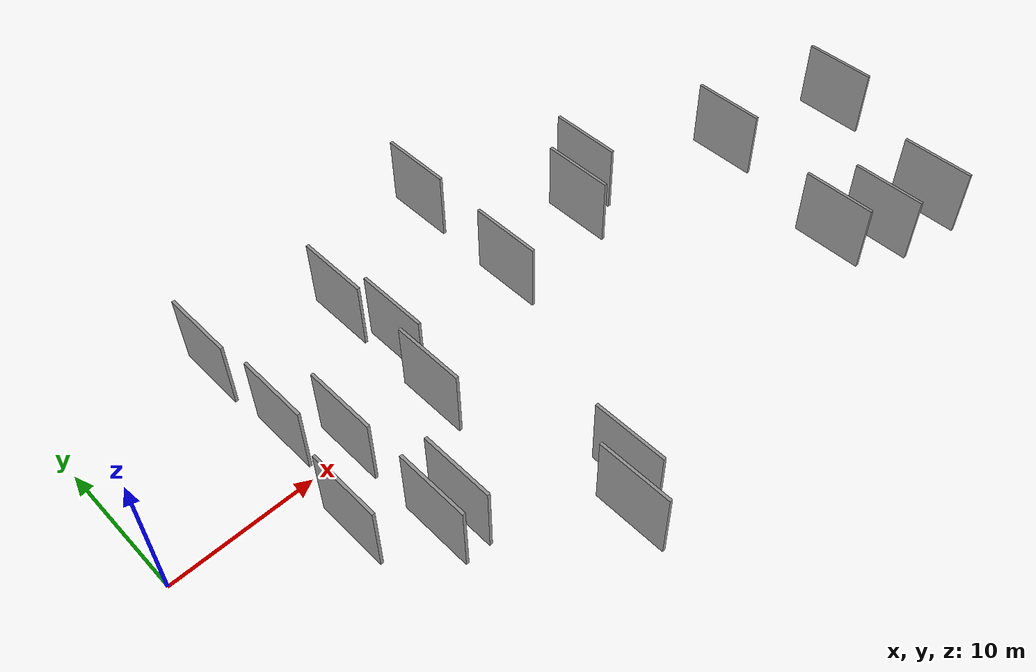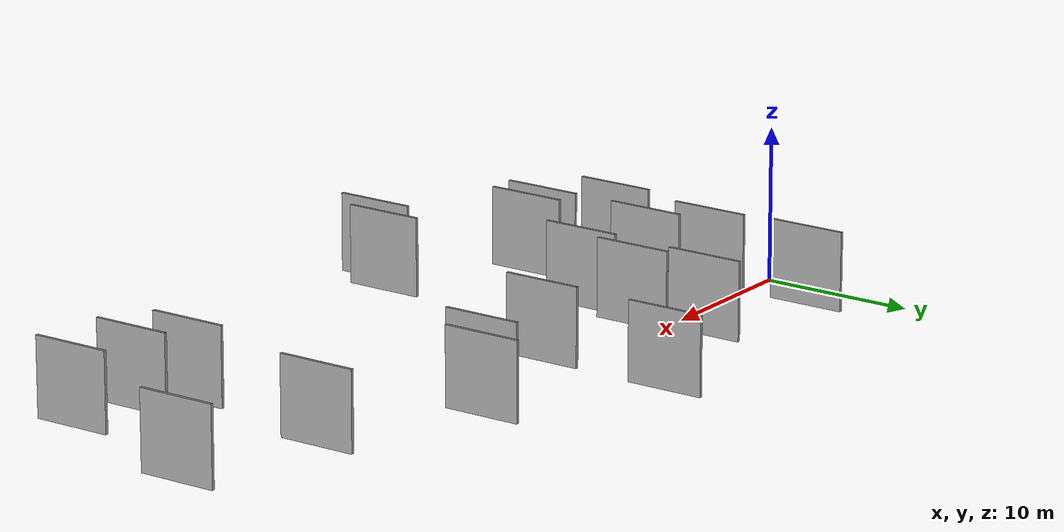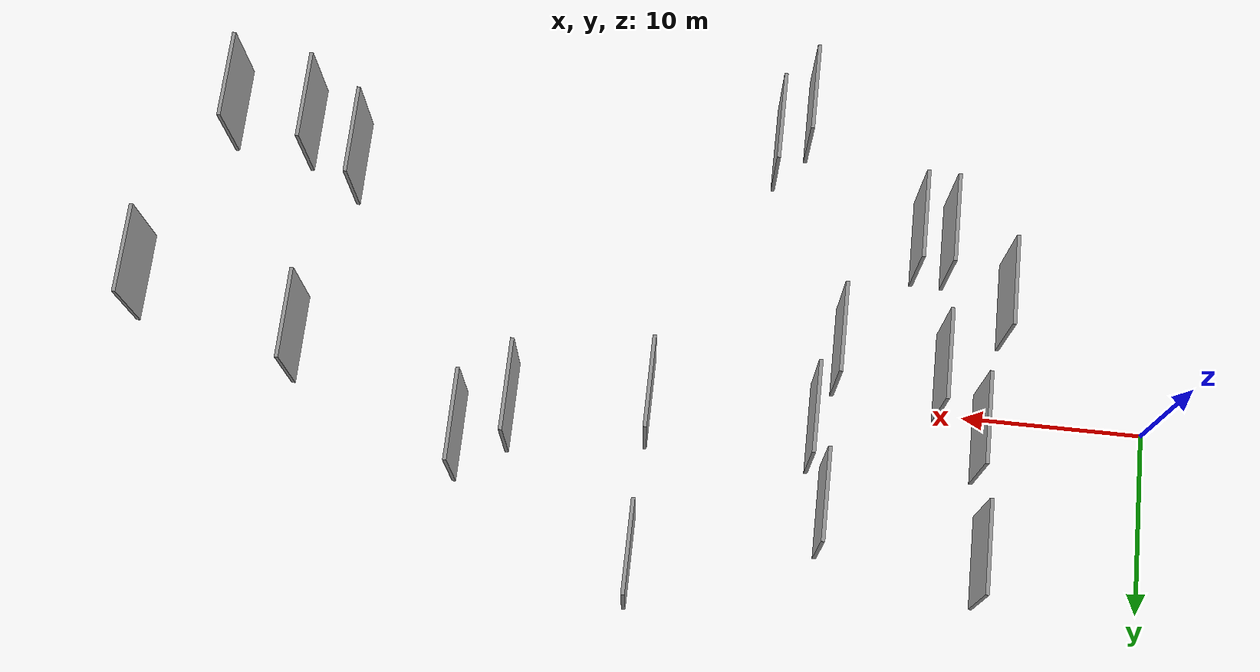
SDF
<sdf version="1.6">
 <world name="default">
  <scene>
   <sky><clouds><speed>12</speed></clouds></sky>
   <ambient>0.4 0.4 0.4 1</ambient>
   <background>0.7 0.7 0.7 1</background>
   <shadows>1</shadows>
  </scene>
  <gravity>0 0 -9.8066</gravity>
  <magnetic_field>6e-06 2.3e-05 -4.2e-05</magnetic_field>
  <physics default="0" name="default_physics" type="ode">
   <ode>
    <solver>
     <type>quick</type>
     <iters>10</iters>
     <sor>1.0</sor>
     <use_dynamic_moi_rescaling>0</use_dynamic_moi_rescaling>
    </solver>
    <constraints>
     <cfm>0</cfm>
     <erp>0.2</erp>
     <contact_max_correcting_vel>100</contact_max_correcting_vel>
     <contact_surface_layer>0.001</contact_surface_layer>
    </constraints>
   </ode>
   <max_step_size>0.004</max_step_size>
   <real_time_factor>1</real_time_factor>
   <real_time_update_rate>250</real_time_update_rate>
  </physics>
  <light name="sun" type="directional">
   <pose>0 0 10 0 0 0</pose>
   <diffuse>0.8 0.8 0.8 1</diffuse>
   <specular>0.2 0.2 0.2 1</specular>
   <attenuation>
    <range>1000</range>
    <constant>0.9</constant>
    <linear>0.01</linear>
    <quadratic>0.001</quadratic>
   </attenuation>
   <direction>-0.5 0.1 -0.9</direction>
  </light>
  <model name="grey_wall_1">
   <static>1</static>
   <pose>18.6274 2.1579 2.5 0.000000 0.000000 1.570796</pose>
   <link name="link">
    <pose>0 0 2.50 0 0 0</pose>
    <collision name="collision"><geometry><box><size>5.00 0.2 5.00</size></box></geometry></collision>
    <visual name="visual">
     <cast_shadows>0</cast_shadows>
     <geometry><box><size>5.00 0.2 5.00</size></box></geometry>
     <material>
      <script>
       <uri>model://grey_wall/materials/scripts</uri>
       <uri>model://grey_wall/materials/textures</uri>
       <name>vrc/grey_wall</name>
      </script>
     </material>
    </visual>
   </link>
  </model>
  <model name="grey_wall_2">
   <static>1</static>
   <pose>52.4475 -13.1715 2.5 0.000000 0.000000 1.570796</pose>
   <link name="link">
    <pose>0 0 2.50 0 0 0</pose>
    <collision name="collision"><geometry><box><size>5.00 0.2 5.00</size></box></geometry></collision>
    <visual name="visual">
     <cast_shadows>0</cast_shadows>
     <geometry><box><size>5.00 0.2 5.00</size></box></geometry>
     <material>
      <script>
       <uri>model://grey_wall/materials/scripts</uri>
       <uri>model://grey_wall/materials/textures</uri>
       <name>vrc/grey_wall</name>
      </script>
     </material>
    </visual>
   </link>
  </model>
  <model name="grey_wall_3">
   <static>1</static>
   <pose>17.5609 -2.3189 2.5 0.000000 0.000000 1.570796</pose>
   <link name="link">
    <pose>0 0 2.50 0 0 0</pose>
    <collision name="collision"><geometry><box><size>5.00 0.2 5.00</size></box></geometry></collision>
    <visual name="visual">
     <cast_shadows>0</cast_shadows>
     <geometry><box><size>5.00 0.2 5.00</size></box></geometry>
     <material>
      <script>
       <uri>model://grey_wall/materials/scripts</uri>
       <uri>model://grey_wall/materials/textures</uri>
       <name>vrc/grey_wall</name>
      </script>
     </material>
    </visual>
   </link>
  </model>
  <model name="grey_wall_4">
   <static>1</static>
   <pose>45.0813 -10.6503 2.5 0.000000 0.000000 1.570796</pose>
   <link name="link">
    <pose>0 0 2.50 0 0 0</pose>
    <collision name="collision"><geometry><box><size>5.00 0.2 5.00</size></box></geometry></collision>
    <visual name="visual">
     <cast_shadows>0</cast_shadows>
     <geometry><box><size>5.00 0.2 5.00</size></box></geometry>
     <material>
      <script>
       <uri>model://grey_wall/materials/scripts</uri>
       <uri>model://grey_wall/materials/textures</uri>
       <name>vrc/grey_wall</name>
      </script>
     </material>
    </visual>
   </link>
  </model>
  <model name="grey_wall_5">
   <static>1</static>
   <pose>8.6585 -5.8861 2.5 0.000000 0.000000 1.570796</pose>
   <link name="link">
    <pose>0 0 2.50 0 0 0</pose>
    <collision name="collision"><geometry><box><size>5.00 0.2 5.00</size></box></geometry></collision>
    <visual name="visual">
     <cast_shadows>0</cast_shadows>
     <geometry><box><size>5.00 0.2 5.00</size></box></geometry>
     <material>
      <script>
       <uri>model://grey_wall/materials/scripts</uri>
       <uri>model://grey_wall/materials/textures</uri>
       <name>vrc/grey_wall</name>
      </script>
     </material>
    </visual>
   </link>
  </model>
  <model name="grey_wall_6">
   <static>1</static>
   <pose>11.9207 -1.4481 2.5 0.000000 0.000000 1.570796</pose>
   <link name="link">
    <pose>0 0 2.50 0 0 0</pose>
    <collision name="collision"><geometry><box><size>5.00 0.2 5.00</size></box></geometry></collision>
    <visual name="visual">
     <cast_shadows>0</cast_shadows>
     <geometry><box><size>5.00 0.2 5.00</size></box></geometry>
     <material>
      <script>
       <uri>model://grey_wall/materials/scripts</uri>
       <uri>model://grey_wall/materials/textures</uri>
       <name>vrc/grey_wall</name>
      </script>
     </material>
    </visual>
   </link>
  </model>
  <model name="grey_wall_7">
   <static>1</static>
   <pose>9.3648 8.5706 2.5 0.000000 0.000000 1.570796</pose>
   <link name="link">
    <pose>0 0 2.50 0 0 0</pose>
    <collision name="collision"><geometry><box><size>5.00 0.2 5.00</size></box></geometry></collision>
    <visual name="visual">
     <cast_shadows>0</cast_shadows>
     <geometry><box><size>5.00 0.2 5.00</size></box></geometry>
     <material>
      <script>
       <uri>model://grey_wall/materials/scripts</uri>
       <uri>model://grey_wall/materials/textures</uri>
       <name>vrc/grey_wall</name>
      </script>
     </material>
    </visual>
   </link>
  </model>
  <model name="grey_wall_8">
   <static>1</static>
   <pose>27.6181 10.5219 2.5 0.000000 0.000000 1.570796</pose>
   <link name="link">
    <pose>0 0 2.50 0 0 0</pose>
    <collision name="collision"><geometry><box><size>5.00 0.2 5.00</size></box></geometry></collision>
    <visual name="visual">
     <cast_shadows>0</cast_shadows>
     <geometry><box><size>5.00 0.2 5.00</size></box></geometry>
     <material>
      <script>
       <uri>model://grey_wall/materials/scripts</uri>
       <uri>model://grey_wall/materials/textures</uri>
       <name>vrc/grey_wall</name>
      </script>
     </material>
    </visual>
   </link>
  </model>
  <model name="grey_wall_9">
   <static>1</static>
   <pose>34.8596 2.7098 2.5 0.000000 0.000000 1.570796</pose>
   <link name="link">
    <pose>0 0 2.50 0 0 0</pose>
    <collision name="collision"><geometry><box><size>5.00 0.2 5.00</size></box></geometry></collision>
    <visual name="visual">
     <cast_shadows>0</cast_shadows>
     <geometry><box><size>5.00 0.2 5.00</size></box></geometry>
     <material>
      <script>
       <uri>model://grey_wall/materials/scripts</uri>
       <uri>model://grey_wall/materials/textures</uri>
       <name>vrc/grey_wall</name>
      </script>
     </material>
    </visual>
   </link>
  </model>
  <model name="grey_wall_10">
   <static>1</static>
   <pose>21.8098 -13.9766 2.5 0.000000 0.000000 1.570796</pose>
   <link name="link">
    <pose>0 0 2.50 0 0 0</pose>
    <collision name="collision"><geometry><box><size>5.00 0.2 5.00</size></box></geometry></collision>
    <visual name="visual">
     <cast_shadows>0</cast_shadows>
     <geometry><box><size>5.00 0.2 5.00</size></box></geometry>
     <material>
      <script>
       <uri>model://grey_wall/materials/scripts</uri>
       <uri>model://grey_wall/materials/textures</uri>
       <name>vrc/grey_wall</name>
      </script>
     </material>
    </visual>
   </link>
  </model>
  <model name="grey_wall_11">
   <static>1</static>
   <pose>17.8005 6.7422 2.5 0.000000 0.000000 1.570796</pose>
   <link name="link">
    <pose>0 0 2.50 0 0 0</pose>
    <collision name="collision"><geometry><box><size>5.00 0.2 5.00</size></box></geometry></collision>
    <visual name="visual">
     <cast_shadows>0</cast_shadows>
     <geometry><box><size>5.00 0.2 5.00</size></box></geometry>
     <material>
      <script>
       <uri>model://grey_wall/materials/scripts</uri>
       <uri>model://grey_wall/materials/textures</uri>
       <name>vrc/grey_wall</name>
      </script>
     </material>
    </visual>
   </link>
  </model>
  <model name="grey_wall_12">
   <static>1</static>
   <pose>20.1133 -15.9107 2.5 0.000000 0.000000 1.570796</pose>
   <link name="link">
    <pose>0 0 2.50 0 0 0</pose>
    <collision name="collision"><geometry><box><size>5.00 0.2 5.00</size></box></geometry></collision>
    <visual name="visual">
     <cast_shadows>0</cast_shadows>
     <geometry><box><size>5.00 0.2 5.00</size></box></geometry>
     <material>
      <script>
       <uri>model://grey_wall/materials/scripts</uri>
       <uri>model://grey_wall/materials/textures</uri>
       <name>vrc/grey_wall</name>
      </script>
     </material>
    </visual>
   </link>
  </model>
  <model name="grey_wall_13">
   <static>1</static>
   <pose>47.9899 -12.4171 2.5 0.000000 0.000000 1.570796</pose>
   <link name="link">
    <pose>0 0 2.50 0 0 0</pose>
    <collision name="collision"><geometry><box><size>5.00 0.2 5.00</size></box></geometry></collision>
    <visual name="visual">
     <cast_shadows>0</cast_shadows>
     <geometry><box><size>5.00 0.2 5.00</size></box></geometry>
     <material>
      <script>
       <uri>model://grey_wall/materials/scripts</uri>
       <uri>model://grey_wall/materials/textures</uri>
       <name>vrc/grey_wall</name>
      </script>
     </material>
    </visual>
   </link>
  </model>
  <model name="grey_wall_14">
   <static>1</static>
   <pose>27.4349 1.7418 2.5 0.000000 0.000000 1.570796</pose>
   <link name="link">
    <pose>0 0 2.50 0 0 0</pose>
    <collision name="collision"><geometry><box><size>5.00 0.2 5.00</size></box></geometry></collision>
    <visual name="visual">
     <cast_shadows>0</cast_shadows>
     <geometry><box><size>5.00 0.2 5.00</size></box></geometry>
     <material>
      <script>
       <uri>model://grey_wall/materials/scripts</uri>
       <uri>model://grey_wall/materials/textures</uri>
       <name>vrc/grey_wall</name>
      </script>
     </material>
    </visual>
   </link>
  </model>
  <model name="grey_wall_15">
   <static>1</static>
   <pose>9.7112 1.7978 2.5 0.000000 0.000000 1.570796</pose>
   <link name="link">
    <pose>0 0 2.50 0 0 0</pose>
    <collision name="collision"><geometry><box><size>5.00 0.2 5.00</size></box></geometry></collision>
    <visual name="visual">
     <cast_shadows>0</cast_shadows>
     <geometry><box><size>5.00 0.2 5.00</size></box></geometry>
     <material>
      <script>
       <uri>model://grey_wall/materials/scripts</uri>
       <uri>model://grey_wall/materials/textures</uri>
       <name>vrc/grey_wall</name>
      </script>
     </material>
    </visual>
   </link>
  </model>
  <model name="grey_wall_16">
   <static>1</static>
   <pose>37.4940 4.6120 2.5 0.000000 0.000000 1.570796</pose>
   <link name="link">
    <pose>0 0 2.50 0 0 0</pose>
    <collision name="collision"><geometry><box><size>5.00 0.2 5.00</size></box></geometry></collision>
    <visual name="visual">
     <cast_shadows>0</cast_shadows>
     <geometry><box><size>5.00 0.2 5.00</size></box></geometry>
     <material>
      <script>
       <uri>model://grey_wall/materials/scripts</uri>
       <uri>model://grey_wall/materials/textures</uri>
       <name>vrc/grey_wall</name>
      </script>
     </material>
    </visual>
   </link>
  </model>
  <model name="grey_wall_17">
   <static>1</static>
   <pose>13.6550 -9.1231 2.5 0.000000 0.000000 1.570796</pose>
   <link name="link">
    <pose>0 0 2.50 0 0 0</pose>
    <collision name="collision"><geometry><box><size>5.00 0.2 5.00</size></box></geometry></collision>
    <visual name="visual">
     <cast_shadows>0</cast_shadows>
     <geometry><box><size>5.00 0.2 5.00</size></box></geometry>
     <material>
      <script>
       <uri>model://grey_wall/materials/scripts</uri>
       <uri>model://grey_wall/materials/textures</uri>
       <name>vrc/grey_wall</name>
      </script>
     </material>
    </visual>
   </link>
  </model>
  <model name="grey_wall_18">
   <static>1</static>
   <pose>56.1921 -2.5561 2.5 0.000000 0.000000 1.570796</pose>
   <link name="link">
    <pose>0 0 2.50 0 0 0</pose>
    <collision name="collision"><geometry><box><size>5.00 0.2 5.00</size></box></geometry></collision>
    <visual name="visual">
     <cast_shadows>0</cast_shadows>
     <geometry><box><size>5.00 0.2 5.00</size></box></geometry>
     <material>
      <script>
       <uri>model://grey_wall/materials/scripts</uri>
       <uri>model://grey_wall/materials/textures</uri>
       <name>vrc/grey_wall</name>
      </script>
     </material>
    </visual>
   </link>
  </model>
  <model name="grey_wall_19">
   <static>1</static>
   <pose>11.9622 -9.0861 2.5 0.000000 0.000000 1.570796</pose>
   <link name="link">
    <pose>0 0 2.50 0 0 0</pose>
    <collision name="collision"><geometry><box><size>5.00 0.2 5.00</size></box></geometry></collision>
    <visual name="visual">
     <cast_shadows>0</cast_shadows>
     <geometry><box><size>5.00 0.2 5.00</size></box></geometry>
     <material>
      <script>
       <uri>model://grey_wall/materials/scripts</uri>
       <uri>model://grey_wall/materials/textures</uri>
       <name>vrc/grey_wall</name>
      </script>
     </material>
    </visual>
   </link>
  </model>
  <model name="grey_wall_20">
   <static>1</static>
   <pose>47.0196 0.0948 2.5 0.000000 0.000000 1.570796</pose>
   <link name="link">
    <pose>0 0 2.50 0 0 0</pose>
    <collision name="collision"><geometry><box><size>5.00 0.2 5.00</size></box></geometry></collision>
    <visual name="visual">
     <cast_shadows>0</cast_shadows>
     <geometry><box><size>5.00 0.2 5.00</size></box></geometry>
     <material>
      <script>
       <uri>model://grey_wall/materials/scripts</uri>
       <uri>model://grey_wall/materials/textures</uri>
       <name>vrc/grey_wall</name>
      </script>
     </material>
    </visual>
   </link>
  </model>
 </world>
</sdf>
